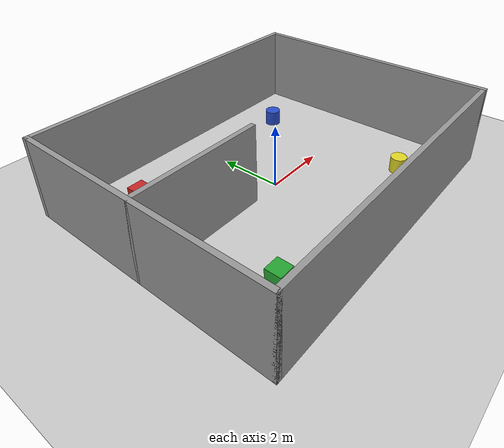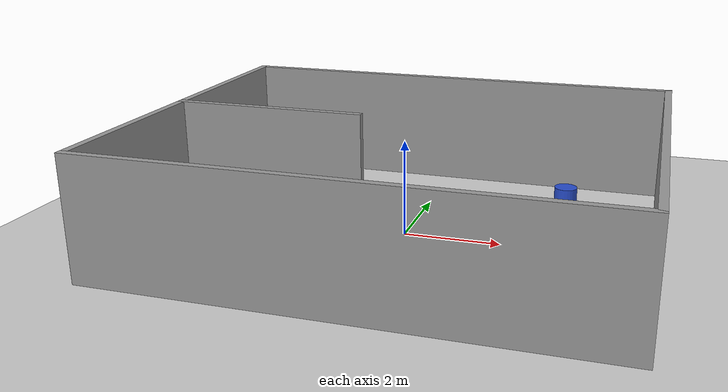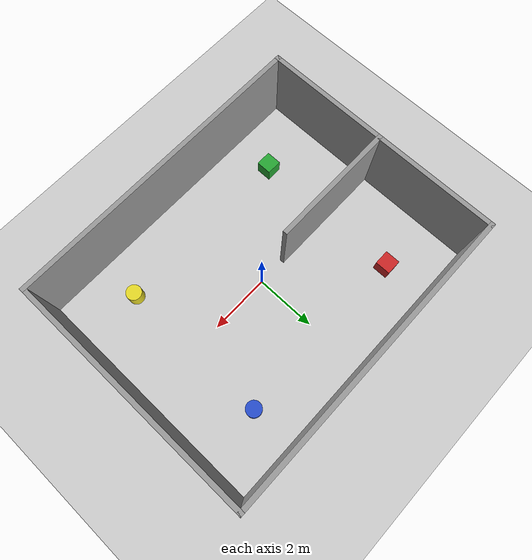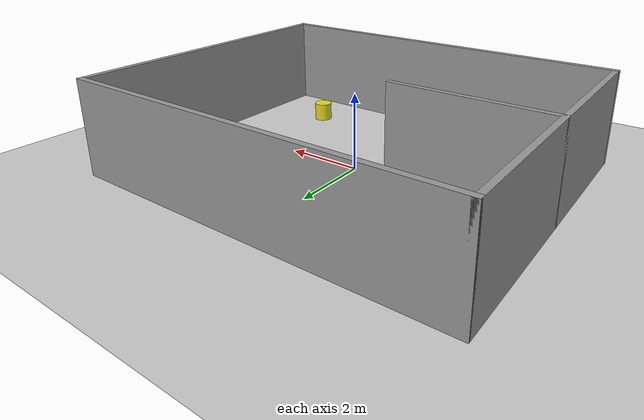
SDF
<sdf version="1.7">
 <world name="small_house">
  <plugin filename="gz-sim-physics-system" name="gz::sim::systems::Physics"/>
  <plugin filename="gz-sim-scene-broadcaster-system" name="gz::sim::systems::SceneBroadcaster"/>
  <plugin filename="gz-sim-user-commands-system" name="gz::sim::systems::UserCommands"/>
  <plugin filename="gz-sim-sensors-system" name="gz::sim::systems::Sensors">
   <render_engine>ogre</render_engine>
  </plugin>
  <plugin filename="gz-sim-imu-system" name="gz::sim::systems::Imu"/>
  <plugin filename="gz-sim-navsat-system" name="gz::sim::systems::NavSat"/>
  <light name="sun" type="directional">
   <cast_shadows>0</cast_shadows>
   <pose>0 0 10 0 -0 0</pose>
   <diffuse>0.8 0.8 0.8 1</diffuse>
   <specular>0.2 0.2 0.2 1</specular>
   <attenuation>
    <range>1000</range>
    <constant>0.9</constant>
    <linear>0.01</linear>
    <quadratic>0.001</quadratic>
   </attenuation>
   <direction>-0.5 0.1 -0.9</direction>
   <spot><inner_angle>0</inner_angle><outer_angle>0</outer_angle><falloff>0</falloff></spot>
  </light>
  <model name="ground_plane">
   <static>1</static>
   <link name="link">
    <collision name="collision">
     <geometry><plane><normal>0 0 1</normal><size>100 100</size></plane></geometry>
     <surface>
      <contact><collide_bitmask>65535</collide_bitmask></contact>
      <friction><ode><mu>100</mu><mu2>50</mu2></ode></friction>
     </surface>
    </collision>
    <visual name="visual">
     <cast_shadows>0</cast_shadows>
     <geometry><plane><normal>0 0 1</normal><size>100 100</size></plane></geometry>
     <material>
      <script><uri>file://media/materials/scripts/gazebo.material</uri><name>Gazebo/Grey</name></script>
     </material>
    </visual>
   </link>
  </model>
  <gravity>0 0 -9.8</gravity>
  <magnetic_field>6e-06 2.3e-05 -4.2e-05</magnetic_field>
  <atmosphere type="adiabatic"/>
  <physics type="ode">
   <max_step_size>0.002</max_step_size>
   <real_time_factor>1</real_time_factor>
   <real_time_update_rate>500</real_time_update_rate>
  </physics>
  <scene><ambient>0.4 0.4 0.4 1</ambient><background>0.7 0.7 0.7 1</background><shadows>0</shadows></scene>
  <audio><device>default</device></audio>
  <spherical_coordinates>
   <surface_model>EARTH_WGS84</surface_model>
   <latitude_deg>0</latitude_deg>
   <longitude_deg>0</longitude_deg>
   <elevation>0</elevation>
   <heading_deg>0</heading_deg>
  </spherical_coordinates>
  <model name="small_house">
   <static>1</static>
   <link name="wall_south">
    <pose>0 -4 1.25 0 -0 0</pose>
    <collision name="Wall_south_Collision"><geometry><box><size>10.15 0.15 2.5</size></box></geometry></collision>
    <visual name="Wall_south_Visual">
     <geometry><box><size>10.15 0.15 2.5</size></box></geometry>
     <material>
      <script><uri>file://media/materials/scripts/gazebo.material</uri><name>Gazebo/Grey</name></script>
      <ambient>1 1 1 1</ambient>
     </material>
    </visual>
   </link>
   <link name="wall_north">
    <pose>0 4 1.25 0 -0 0</pose>
    <collision name="Wall_north_Collision"><geometry><box><size>10.15 0.15 2.5</size></box></geometry></collision>
    <visual name="Wall_north_Visual">
     <geometry><box><size>10.15 0.15 2.5</size></box></geometry>
     <material>
      <script><uri>file://media/materials/scripts/gazebo.material</uri><name>Gazebo/Grey</name></script>
      <ambient>1 1 1 1</ambient>
     </material>
    </visual>
   </link>
   <link name="wall_west">
    <pose>-5 0 1.25 0 -0 0</pose>
    <collision name="Wall_west_Collision"><geometry><box><size>0.15 8.15 2.5</size></box></geometry></collision>
    <visual name="Wall_west_Visual">
     <geometry><box><size>0.15 8.15 2.5</size></box></geometry>
     <material>
      <script><uri>file://media/materials/scripts/gazebo.material</uri><name>Gazebo/Grey</name></script>
      <ambient>1 1 1 1</ambient>
     </material>
    </visual>
   </link>
   <link name="wall_east">
    <pose>5 0 1.25 0 -0 0</pose>
    <collision name="Wall_east_Collision"><geometry><box><size>0.15 8.15 2.5</size></box></geometry></collision>
    <visual name="Wall_east_Visual">
     <geometry><box><size>0.15 8.15 2.5</size></box></geometry>
     <material>
      <script><uri>file://media/materials/scripts/gazebo.material</uri><name>Gazebo/Grey</name></script>
      <ambient>1 1 1 1</ambient>
     </material>
    </visual>
   </link>
   <link name="wall_inner">
    <pose>-3 0 1.25 0 -0 0</pose>
    <collision name="Wall_inner_Collision"><geometry><box><size>4.15 0.15 2.5</size></box></geometry></collision>
    <visual name="Wall_inner_Visual">
     <geometry><box><size>4.15 0.15 2.5</size></box></geometry>
     <material>
      <script><uri>file://media/materials/scripts/gazebo.material</uri><name>Gazebo/Grey</name></script>
      <ambient>0.9 0.9 0.9 1</ambient>
     </material>
    </visual>
   </link>
   <link name="obs_box_nw">
    <pose>-3 2.5 0.25 0 -0 0</pose>
    <collision name="obs_box_nw_Collision"><geometry><box><size>0.5 0.5 0.5</size></box></geometry></collision>
    <visual name="obs_box_nw_Visual">
     <geometry><box><size>0.5 0.5 0.5</size></box></geometry>
     <material>
      <script><uri>file://media/materials/scripts/gazebo.material</uri><name>Gazebo/Red</name></script>
     </material>
    </visual>
   </link>
   <link name="obs_cyl_ne">
    <pose>3 2.5 0.25 0 -0 0</pose>
    <collision name="obs_cyl_ne_Collision">
     <geometry><cylinder><radius>0.25</radius><length>0.5</length></cylinder></geometry>
    </collision>
    <visual name="obs_cyl_ne_Visual">
     <geometry><cylinder><radius>0.25</radius><length>0.5</length></cylinder></geometry>
     <material>
      <script><uri>file://media/materials/scripts/gazebo.material</uri><name>Gazebo/Blue</name></script>
     </material>
    </visual>
   </link>
   <link name="obs_box_sw">
    <pose>-3 -2.5 0.25 0 -0 0</pose>
    <collision name="obs_box_sw_Collision"><geometry><box><size>0.5 0.5 0.5</size></box></geometry></collision>
    <visual name="obs_box_sw_Visual">
     <geometry><box><size>0.5 0.5 0.5</size></box></geometry>
     <material>
      <script><uri>file://media/materials/scripts/gazebo.material</uri><name>Gazebo/Green</name></script>
     </material>
    </visual>
   </link>
   <link name="obs_cyl_se">
    <pose>3 -2.5 0.25 0 -0 0</pose>
    <collision name="obs_cyl_se_Collision">
     <geometry><cylinder><radius>0.25</radius><length>0.5</length></cylinder></geometry>
    </collision>
    <visual name="obs_cyl_se_Visual">
     <geometry><cylinder><radius>0.25</radius><length>0.5</length></cylinder></geometry>
     <material>
      <script><uri>file://media/materials/scripts/gazebo.material</uri><name>Gazebo/Yellow</name></script>
     </material>
    </visual>
   </link>
   <static>1</static>
  </model>
 </world>
</sdf>
